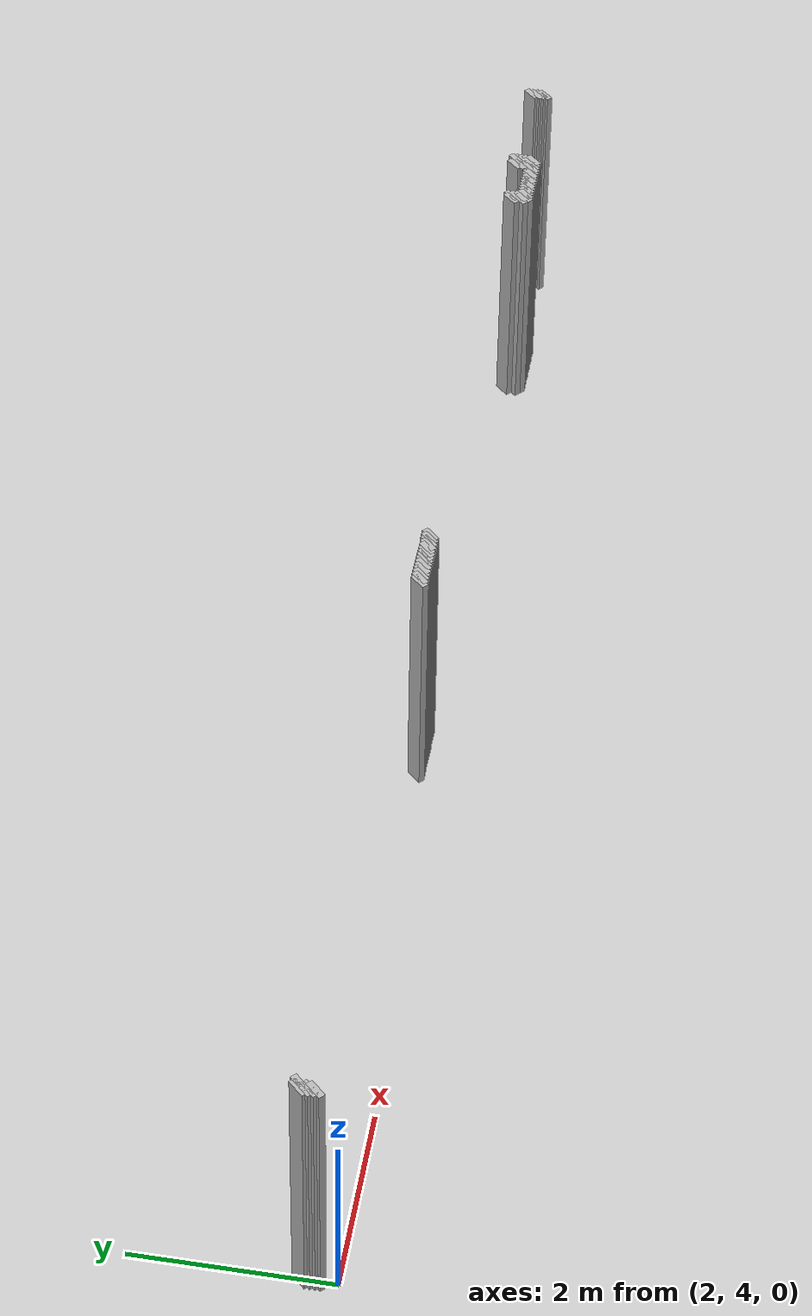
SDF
<sdf version="1.5">
 <world name="default">
  <include><uri>model://ground_plane</uri></include>
  <include><uri>model://sun</uri></include>
  <model name="grey_wall_3287">
   <static>1</static>
   <link name="link">
    <pose>15.65 4.4  1.4 0 0 -0.7853981633974483</pose>
    <collision name="collision">
     <geometry><box><size>0.07071067811865576 .2  2.8</size></box></geometry>
    </collision>
    <visual name="visual">
     <cast_shadows>0</cast_shadows>
     <geometry><box><size>0.07071067811865576 .2  2.8</size></box></geometry>
    </visual>
   </link>
  </model>
  <model name="grey_wall_3288">
   <static>1</static>
   <link name="link">
    <pose>15.75 4.4  1.4 0 0 -0.7853981633974483</pose>
    <collision name="collision">
     <geometry><box><size>0.07071067811865576 .2  2.8</size></box></geometry>
    </collision>
    <visual name="visual">
     <cast_shadows>0</cast_shadows>
     <geometry><box><size>0.07071067811865576 .2  2.8</size></box></geometry>
    </visual>
   </link>
  </model>
  <model name="grey_wall_3289">
   <static>1</static>
   <link name="link">
    <pose>17.05 4.4  1.4 0 0 -0.7853981633974838</pose>
    <collision name="collision">
     <geometry><box><size>0.07071067811865325 .2  2.8</size></box></geometry>
    </collision>
    <visual name="visual">
     <cast_shadows>0</cast_shadows>
     <geometry><box><size>0.07071067811865325 .2  2.8</size></box></geometry>
    </visual>
   </link>
  </model>
  <model name="grey_wall_3290">
   <static>1</static>
   <link name="link">
    <pose>2.0 4.3500000000000005  1.4 0 0 -0.7853981633974572</pose>
    <collision name="collision">
     <geometry><box><size>0.07071067811865513 .2  2.8</size></box></geometry>
    </collision>
    <visual name="visual">
     <cast_shadows>0</cast_shadows>
     <geometry><box><size>0.07071067811865513 .2  2.8</size></box></geometry>
    </visual>
   </link>
  </model>
  <model name="grey_wall_3291">
   <static>1</static>
   <link name="link">
    <pose>2.0500000000000003 4.3500000000000005  1.4 0 0 -0.7853981633974572</pose>
    <collision name="collision">
     <geometry><box><size>0.07071067811865513 .2  2.8</size></box></geometry>
    </collision>
    <visual name="visual">
     <cast_shadows>0</cast_shadows>
     <geometry><box><size>0.07071067811865513 .2  2.8</size></box></geometry>
    </visual>
   </link>
  </model>
  <model name="grey_wall_3292">
   <static>1</static>
   <link name="link">
    <pose>8.55 4.3500000000000005  1.4 0 0 -0.7853981633974483</pose>
    <collision name="collision">
     <geometry><box><size>0.07071067811865576 .2  2.8</size></box></geometry>
    </collision>
    <visual name="visual">
     <cast_shadows>0</cast_shadows>
     <geometry><box><size>0.07071067811865576 .2  2.8</size></box></geometry>
    </visual>
   </link>
  </model>
  <model name="grey_wall_3293">
   <static>1</static>
   <link name="link">
    <pose>8.6 4.3500000000000005  1.4 0 0 -0.7853981633974483</pose>
    <collision name="collision">
     <geometry><box><size>0.07071067811865576 .2  2.8</size></box></geometry>
    </collision>
    <visual name="visual">
     <cast_shadows>0</cast_shadows>
     <geometry><box><size>0.07071067811865576 .2  2.8</size></box></geometry>
    </visual>
   </link>
  </model>
  <model name="grey_wall_3294">
   <static>1</static>
   <link name="link">
    <pose>8.65 4.3500000000000005  1.4 0 0 -0.7853981633974483</pose>
    <collision name="collision">
     <geometry><box><size>0.07071067811865576 .2  2.8</size></box></geometry>
    </collision>
    <visual name="visual">
     <cast_shadows>0</cast_shadows>
     <geometry><box><size>0.07071067811865576 .2  2.8</size></box></geometry>
    </visual>
   </link>
  </model>
  <model name="grey_wall_3295">
   <static>1</static>
   <link name="link">
    <pose>8.700000000000001 4.3500000000000005  1.4 0 0 -0.7853981633974483</pose>
    <collision name="collision">
     <geometry><box><size>0.07071067811865576 .2  2.8</size></box></geometry>
    </collision>
    <visual name="visual">
     <cast_shadows>0</cast_shadows>
     <geometry><box><size>0.07071067811865576 .2  2.8</size></box></geometry>
    </visual>
   </link>
  </model>
  <model name="grey_wall_3296">
   <static>1</static>
   <link name="link">
    <pose>8.75 4.3500000000000005  1.4 0 0 -0.7853981633974483</pose>
    <collision name="collision">
     <geometry><box><size>0.07071067811865576 .2  2.8</size></box></geometry>
    </collision>
    <visual name="visual">
     <cast_shadows>0</cast_shadows>
     <geometry><box><size>0.07071067811865576 .2  2.8</size></box></geometry>
    </visual>
   </link>
  </model>
  <model name="grey_wall_3297">
   <static>1</static>
   <link name="link">
    <pose>8.8 4.3500000000000005  1.4 0 0 -0.7853981633974483</pose>
    <collision name="collision">
     <geometry><box><size>0.07071067811865576 .2  2.8</size></box></geometry>
    </collision>
    <visual name="visual">
     <cast_shadows>0</cast_shadows>
     <geometry><box><size>0.07071067811865576 .2  2.8</size></box></geometry>
    </visual>
   </link>
  </model>
  <model name="grey_wall_3298">
   <static>1</static>
   <link name="link">
    <pose>8.85 4.3500000000000005  1.4 0 0 -0.7853981633974483</pose>
    <collision name="collision">
     <geometry><box><size>0.07071067811865576 .2  2.8</size></box></geometry>
    </collision>
    <visual name="visual">
     <cast_shadows>0</cast_shadows>
     <geometry><box><size>0.07071067811865576 .2  2.8</size></box></geometry>
    </visual>
   </link>
  </model>
  <model name="grey_wall_3299">
   <static>1</static>
   <link name="link">
    <pose>8.9 4.3500000000000005  1.4 0 0 -0.7853981633974483</pose>
    <collision name="collision">
     <geometry><box><size>0.07071067811865576 .2  2.8</size></box></geometry>
    </collision>
    <visual name="visual">
     <cast_shadows>0</cast_shadows>
     <geometry><box><size>0.07071067811865576 .2  2.8</size></box></geometry>
    </visual>
   </link>
  </model>
  <model name="grey_wall_3300">
   <static>1</static>
   <link name="link">
    <pose>8.950000000000001 4.3500000000000005  1.4 0 0 -0.7853981633974483</pose>
    <collision name="collision">
     <geometry><box><size>0.07071067811865576 .2  2.8</size></box></geometry>
    </collision>
    <visual name="visual">
     <cast_shadows>0</cast_shadows>
     <geometry><box><size>0.07071067811865576 .2  2.8</size></box></geometry>
    </visual>
   </link>
  </model>
  <model name="grey_wall_3301">
   <static>1</static>
   <link name="link">
    <pose>9.0 4.3500000000000005  1.4 0 0 -0.7853981633974483</pose>
    <collision name="collision">
     <geometry><box><size>0.07071067811865576 .2  2.8</size></box></geometry>
    </collision>
    <visual name="visual">
     <cast_shadows>0</cast_shadows>
     <geometry><box><size>0.07071067811865576 .2  2.8</size></box></geometry>
    </visual>
   </link>
  </model>
  <model name="grey_wall_3302">
   <static>1</static>
   <link name="link">
    <pose>9.05 4.3500000000000005  1.4 0 0 -0.7853981633974483</pose>
    <collision name="collision">
     <geometry><box><size>0.07071067811865576 .2  2.8</size></box></geometry>
    </collision>
    <visual name="visual">
     <cast_shadows>0</cast_shadows>
     <geometry><box><size>0.07071067811865576 .2  2.8</size></box></geometry>
    </visual>
   </link>
  </model>
  <model name="grey_wall_3303">
   <static>1</static>
   <link name="link">
    <pose>9.1 4.3500000000000005  1.4 0 0 -0.7853981633974483</pose>
    <collision name="collision">
     <geometry><box><size>0.07071067811865576 .2  2.8</size></box></geometry>
    </collision>
    <visual name="visual">
     <cast_shadows>0</cast_shadows>
     <geometry><box><size>0.07071067811865576 .2  2.8</size></box></geometry>
    </visual>
   </link>
  </model>
  <model name="grey_wall_3304">
   <static>1</static>
   <link name="link">
    <pose>9.15 4.3500000000000005  1.4 0 0 -0.7853981633974483</pose>
    <collision name="collision">
     <geometry><box><size>0.07071067811865576 .2  2.8</size></box></geometry>
    </collision>
    <visual name="visual">
     <cast_shadows>0</cast_shadows>
     <geometry><box><size>0.07071067811865576 .2  2.8</size></box></geometry>
    </visual>
   </link>
  </model>
  <model name="grey_wall_3305">
   <static>1</static>
   <link name="link">
    <pose>9.200000000000001 4.3500000000000005  1.4 0 0 -0.7853981633974483</pose>
    <collision name="collision">
     <geometry><box><size>0.07071067811865576 .2  2.8</size></box></geometry>
    </collision>
    <visual name="visual">
     <cast_shadows>0</cast_shadows>
     <geometry><box><size>0.07071067811865576 .2  2.8</size></box></geometry>
    </visual>
   </link>
  </model>
  <model name="grey_wall_3306">
   <static>1</static>
   <link name="link">
    <pose>9.25 4.3500000000000005  1.4 0 0 -0.7853981633974483</pose>
    <collision name="collision">
     <geometry><box><size>0.07071067811865576 .2  2.8</size></box></geometry>
    </collision>
    <visual name="visual">
     <cast_shadows>0</cast_shadows>
     <geometry><box><size>0.07071067811865576 .2  2.8</size></box></geometry>
    </visual>
   </link>
  </model>
  <model name="grey_wall_3307">
   <static>1</static>
   <link name="link">
    <pose>15.0 4.3500000000000005  1.4 0 0 -0.7853981633974483</pose>
    <collision name="collision">
     <geometry><box><size>0.07071067811865576 .2  2.8</size></box></geometry>
    </collision>
    <visual name="visual">
     <cast_shadows>0</cast_shadows>
     <geometry><box><size>0.07071067811865576 .2  2.8</size></box></geometry>
    </visual>
   </link>
  </model>
  <model name="grey_wall_3308">
   <static>1</static>
   <link name="link">
    <pose>15.05 4.3500000000000005  1.4 0 0 -0.7853981633974483</pose>
    <collision name="collision">
     <geometry><box><size>0.07071067811865576 .2  2.8</size></box></geometry>
    </collision>
    <visual name="visual">
     <cast_shadows>0</cast_shadows>
     <geometry><box><size>0.07071067811865576 .2  2.8</size></box></geometry>
    </visual>
   </link>
  </model>
  <model name="grey_wall_3309">
   <static>1</static>
   <link name="link">
    <pose>15.65 4.3500000000000005  1.4 0 0 -0.7853981633974483</pose>
    <collision name="collision">
     <geometry><box><size>0.07071067811865576 .2  2.8</size></box></geometry>
    </collision>
    <visual name="visual">
     <cast_shadows>0</cast_shadows>
     <geometry><box><size>0.07071067811865576 .2  2.8</size></box></geometry>
    </visual>
   </link>
  </model>
  <model name="grey_wall_3310">
   <static>1</static>
   <link name="link">
    <pose>15.75 4.3500000000000005  1.4 0 0 -0.7853981633974483</pose>
    <collision name="collision">
     <geometry><box><size>0.07071067811865576 .2  2.8</size></box></geometry>
    </collision>
    <visual name="visual">
     <cast_shadows>0</cast_shadows>
     <geometry><box><size>0.07071067811865576 .2  2.8</size></box></geometry>
    </visual>
   </link>
  </model>
  <model name="grey_wall_3311">
   <static>1</static>
   <link name="link">
    <pose>17.05 4.3500000000000005  1.4 0 0 -0.7853981633974838</pose>
    <collision name="collision">
     <geometry><box><size>0.07071067811865325 .2  2.8</size></box></geometry>
    </collision>
    <visual name="visual">
     <cast_shadows>0</cast_shadows>
     <geometry><box><size>0.07071067811865325 .2  2.8</size></box></geometry>
    </visual>
   </link>
  </model>
  <model name="grey_wall_3312">
   <static>1</static>
   <link name="link">
    <pose>2.0 4.3  1.4 0 0 -0.7853981633974572</pose>
    <collision name="collision">
     <geometry><box><size>0.07071067811865513 .2  2.8</size></box></geometry>
    </collision>
    <visual name="visual">
     <cast_shadows>0</cast_shadows>
     <geometry><box><size>0.07071067811865513 .2  2.8</size></box></geometry>
    </visual>
   </link>
  </model>
  <model name="grey_wall_3313">
   <static>1</static>
   <link name="link">
    <pose>15.05 4.3  1.4 0 0 -0.7853981633974483</pose>
    <collision name="collision">
     <geometry><box><size>0.07071067811865576 .2  2.8</size></box></geometry>
    </collision>
    <visual name="visual">
     <cast_shadows>0</cast_shadows>
     <geometry><box><size>0.07071067811865576 .2  2.8</size></box></geometry>
    </visual>
   </link>
  </model>
  <model name="grey_wall_3314">
   <static>1</static>
   <link name="link">
    <pose>15.65 4.3  1.4 0 0 -0.7853981633974483</pose>
    <collision name="collision">
     <geometry><box><size>0.07071067811865576 .2  2.8</size></box></geometry>
    </collision>
    <visual name="visual">
     <cast_shadows>0</cast_shadows>
     <geometry><box><size>0.07071067811865576 .2  2.8</size></box></geometry>
    </visual>
   </link>
  </model>
  <model name="grey_wall_3315">
   <static>1</static>
   <link name="link">
    <pose>15.75 4.3  1.4 0 0 -0.7853981633974483</pose>
    <collision name="collision">
     <geometry><box><size>0.07071067811865576 .2  2.8</size></box></geometry>
    </collision>
    <visual name="visual">
     <cast_shadows>0</cast_shadows>
     <geometry><box><size>0.07071067811865576 .2  2.8</size></box></geometry>
    </visual>
   </link>
  </model>
  <model name="grey_wall_3316">
   <static>1</static>
   <link name="link">
    <pose>17.05 4.3  1.4 0 0 -0.7853981633974838</pose>
    <collision name="collision">
     <geometry><box><size>0.07071067811865325 .2  2.8</size></box></geometry>
    </collision>
    <visual name="visual">
     <cast_shadows>0</cast_shadows>
     <geometry><box><size>0.07071067811865325 .2  2.8</size></box></geometry>
    </visual>
   </link>
  </model>
  <model name="grey_wall_3317">
   <static>1</static>
   <link name="link">
    <pose>2.0 4.25  1.4 0 0 -0.7853981633974572</pose>
    <collision name="collision">
     <geometry><box><size>0.07071067811865513 .2  2.8</size></box></geometry>
    </collision>
    <visual name="visual">
     <cast_shadows>0</cast_shadows>
     <geometry><box><size>0.07071067811865513 .2  2.8</size></box></geometry>
    </visual>
   </link>
  </model>
  <model name="grey_wall_3318">
   <static>1</static>
   <link name="link">
    <pose>15.0 4.25  1.4 0 0 -0.7853981633974483</pose>
    <collision name="collision">
     <geometry><box><size>0.07071067811865576 .2  2.8</size></box></geometry>
    </collision>
    <visual name="visual">
     <cast_shadows>0</cast_shadows>
     <geometry><box><size>0.07071067811865576 .2  2.8</size></box></geometry>
    </visual>
   </link>
  </model>
  <model name="grey_wall_3319">
   <static>1</static>
   <link name="link">
    <pose>15.05 4.25  1.4 0 0 -0.7853981633974483</pose>
    <collision name="collision">
     <geometry><box><size>0.07071067811865576 .2  2.8</size></box></geometry>
    </collision>
    <visual name="visual">
     <cast_shadows>0</cast_shadows>
     <geometry><box><size>0.07071067811865576 .2  2.8</size></box></geometry>
    </visual>
   </link>
  </model>
  <model name="grey_wall_3320">
   <static>1</static>
   <link name="link">
    <pose>15.65 4.25  1.4 0 0 -0.7853981633974483</pose>
    <collision name="collision">
     <geometry><box><size>0.07071067811865576 .2  2.8</size></box></geometry>
    </collision>
    <visual name="visual">
     <cast_shadows>0</cast_shadows>
     <geometry><box><size>0.07071067811865576 .2  2.8</size></box></geometry>
    </visual>
   </link>
  </model>
  <model name="grey_wall_3321">
   <static>1</static>
   <link name="link">
    <pose>15.700000000000001 4.25  1.4 0 0 -0.7853981633974483</pose>
    <collision name="collision">
     <geometry><box><size>0.07071067811865576 .2  2.8</size></box></geometry>
    </collision>
    <visual name="visual">
     <cast_shadows>0</cast_shadows>
     <geometry><box><size>0.07071067811865576 .2  2.8</size></box></geometry>
    </visual>
   </link>
  </model>
  <model name="grey_wall_3322">
   <static>1</static>
   <link name="link">
    <pose>15.75 4.25  1.4 0 0 -0.7853981633974483</pose>
    <collision name="collision">
     <geometry><box><size>0.07071067811865576 .2  2.8</size></box></geometry>
    </collision>
    <visual name="visual">
     <cast_shadows>0</cast_shadows>
     <geometry><box><size>0.07071067811865576 .2  2.8</size></box></geometry>
    </visual>
   </link>
  </model>
  <model name="grey_wall_3323">
   <static>1</static>
   <link name="link">
    <pose>17.05 4.25  1.4 0 0 -0.7853981633974838</pose>
    <collision name="collision">
     <geometry><box><size>0.07071067811865325 .2  2.8</size></box></geometry>
    </collision>
    <visual name="visual">
     <cast_shadows>0</cast_shadows>
     <geometry><box><size>0.07071067811865325 .2  2.8</size></box></geometry>
    </visual>
   </link>
  </model>
  <model name="grey_wall_3324">
   <static>1</static>
   <link name="link">
    <pose>2.0 4.2  1.4 0 0 -0.7853981633974572</pose>
    <collision name="collision">
     <geometry><box><size>0.07071067811865513 .2  2.8</size></box></geometry>
    </collision>
    <visual name="visual">
     <cast_shadows>0</cast_shadows>
     <geometry><box><size>0.07071067811865513 .2  2.8</size></box></geometry>
    </visual>
   </link>
  </model>
  <model name="grey_wall_3325">
   <static>1</static>
   <link name="link">
    <pose>15.05 4.2  1.4 0 0 -0.7853981633974483</pose>
    <collision name="collision">
     <geometry><box><size>0.07071067811865576 .2  2.8</size></box></geometry>
    </collision>
    <visual name="visual">
     <cast_shadows>0</cast_shadows>
     <geometry><box><size>0.07071067811865576 .2  2.8</size></box></geometry>
    </visual>
   </link>
  </model>
  <model name="grey_wall_3326">
   <static>1</static>
   <link name="link">
    <pose>15.100000000000001 4.2  1.4 0 0 -0.7853981633974483</pose>
    <collision name="collision">
     <geometry><box><size>0.07071067811865576 .2  2.8</size></box></geometry>
    </collision>
    <visual name="visual">
     <cast_shadows>0</cast_shadows>
     <geometry><box><size>0.07071067811865576 .2  2.8</size></box></geometry>
    </visual>
   </link>
  </model>
  <model name="grey_wall_3327">
   <static>1</static>
   <link name="link">
    <pose>15.15 4.2  1.4 0 0 -0.7853981633974483</pose>
    <collision name="collision">
     <geometry><box><size>0.07071067811865576 .2  2.8</size></box></geometry>
    </collision>
    <visual name="visual">
     <cast_shadows>0</cast_shadows>
     <geometry><box><size>0.07071067811865576 .2  2.8</size></box></geometry>
    </visual>
   </link>
  </model>
  <model name="grey_wall_3328">
   <static>1</static>
   <link name="link">
    <pose>15.200000000000001 4.2  1.4 0 0 -0.7853981633974483</pose>
    <collision name="collision">
     <geometry><box><size>0.07071067811865576 .2  2.8</size></box></geometry>
    </collision>
    <visual name="visual">
     <cast_shadows>0</cast_shadows>
     <geometry><box><size>0.07071067811865576 .2  2.8</size></box></geometry>
    </visual>
   </link>
  </model>
  <model name="grey_wall_3329">
   <static>1</static>
   <link name="link">
    <pose>15.25 4.2  1.4 0 0 -0.7853981633974483</pose>
    <collision name="collision">
     <geometry><box><size>0.07071067811865576 .2  2.8</size></box></geometry>
    </collision>
    <visual name="visual">
     <cast_shadows>0</cast_shadows>
     <geometry><box><size>0.07071067811865576 .2  2.8</size></box></geometry>
    </visual>
   </link>
  </model>
  <model name="grey_wall_3330">
   <static>1</static>
   <link name="link">
    <pose>15.3 4.2  1.4 0 0 -0.7853981633974483</pose>
    <collision name="collision">
     <geometry><box><size>0.07071067811865576 .2  2.8</size></box></geometry>
    </collision>
    <visual name="visual">
     <cast_shadows>0</cast_shadows>
     <geometry><box><size>0.07071067811865576 .2  2.8</size></box></geometry>
    </visual>
   </link>
  </model>
  <model name="grey_wall_3331">
   <static>1</static>
   <link name="link">
    <pose>15.350000000000001 4.2  1.4 0 0 -0.7853981633974483</pose>
    <collision name="collision">
     <geometry><box><size>0.07071067811865576 .2  2.8</size></box></geometry>
    </collision>
    <visual name="visual">
     <cast_shadows>0</cast_shadows>
     <geometry><box><size>0.07071067811865576 .2  2.8</size></box></geometry>
    </visual>
   </link>
  </model>
  <model name="grey_wall_3332">
   <static>1</static>
   <link name="link">
    <pose>15.4 4.2  1.4 0 0 -0.7853981633974483</pose>
    <collision name="collision">
     <geometry><box><size>0.07071067811865576 .2  2.8</size></box></geometry>
    </collision>
    <visual name="visual">
     <cast_shadows>0</cast_shadows>
     <geometry><box><size>0.07071067811865576 .2  2.8</size></box></geometry>
    </visual>
   </link>
  </model>
  <model name="grey_wall_3333">
   <static>1</static>
   <link name="link">
    <pose>15.450000000000001 4.2  1.4 0 0 -0.7853981633974483</pose>
    <collision name="collision">
     <geometry><box><size>0.07071067811865576 .2  2.8</size></box></geometry>
    </collision>
    <visual name="visual">
     <cast_shadows>0</cast_shadows>
     <geometry><box><size>0.07071067811865576 .2  2.8</size></box></geometry>
    </visual>
   </link>
  </model>
  <model name="grey_wall_3334">
   <static>1</static>
   <link name="link">
    <pose>15.5 4.2  1.4 0 0 -0.7853981633974483</pose>
    <collision name="collision">
     <geometry><box><size>0.07071067811865576 .2  2.8</size></box></geometry>
    </collision>
    <visual name="visual">
     <cast_shadows>0</cast_shadows>
     <geometry><box><size>0.07071067811865576 .2  2.8</size></box></geometry>
    </visual>
   </link>
  </model>
  <model name="grey_wall_3335">
   <static>1</static>
   <link name="link">
    <pose>15.55 4.2  1.4 0 0 -0.7853981633974483</pose>
    <collision name="collision">
     <geometry><box><size>0.07071067811865576 .2  2.8</size></box></geometry>
    </collision>
    <visual name="visual">
     <cast_shadows>0</cast_shadows>
     <geometry><box><size>0.07071067811865576 .2  2.8</size></box></geometry>
    </visual>
   </link>
  </model>
  <model name="grey_wall_3336">
   <static>1</static>
   <link name="link">
    <pose>15.600000000000001 4.2  1.4 0 0 -0.7853981633974483</pose>
    <collision name="collision">
     <geometry><box><size>0.07071067811865576 .2  2.8</size></box></geometry>
    </collision>
    <visual name="visual">
     <cast_shadows>0</cast_shadows>
     <geometry><box><size>0.07071067811865576 .2  2.8</size></box></geometry>
    </visual>
   </link>
  </model>
  <model name="grey_wall_3337">
   <static>1</static>
   <link name="link">
    <pose>15.65 4.2  1.4 0 0 -0.7853981633974483</pose>
    <collision name="collision">
     <geometry><box><size>0.07071067811865576 .2  2.8</size></box></geometry>
    </collision>
    <visual name="visual">
     <cast_shadows>0</cast_shadows>
     <geometry><box><size>0.07071067811865576 .2  2.8</size></box></geometry>
    </visual>
   </link>
  </model>
  <model name="grey_wall_3338">
   <static>1</static>
   <link name="link">
    <pose>15.700000000000001 4.2  1.4 0 0 -0.7853981633974483</pose>
    <collision name="collision">
     <geometry><box><size>0.07071067811865576 .2  2.8</size></box></geometry>
    </collision>
    <visual name="visual">
     <cast_shadows>0</cast_shadows>
     <geometry><box><size>0.07071067811865576 .2  2.8</size></box></geometry>
    </visual>
   </link>
  </model>
  <model name="grey_wall_3339">
   <static>1</static>
   <link name="link">
    <pose>15.75 4.2  1.4 0 0 -0.7853981633974483</pose>
    <collision name="collision">
     <geometry><box><size>0.07071067811865576 .2  2.8</size></box></geometry>
    </collision>
    <visual name="visual">
     <cast_shadows>0</cast_shadows>
     <geometry><box><size>0.07071067811865576 .2  2.8</size></box></geometry>
    </visual>
   </link>
  </model>
 </world>
</sdf>
